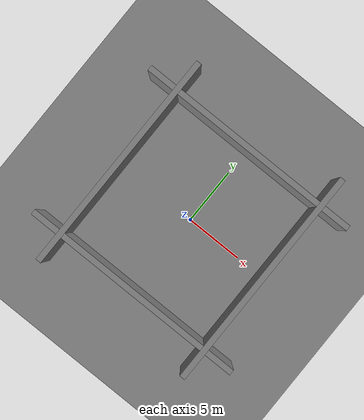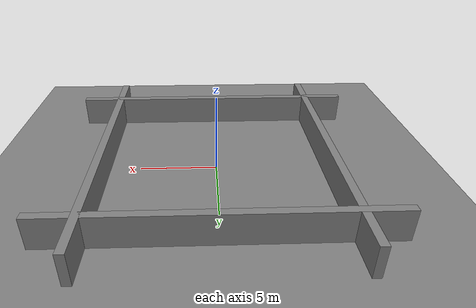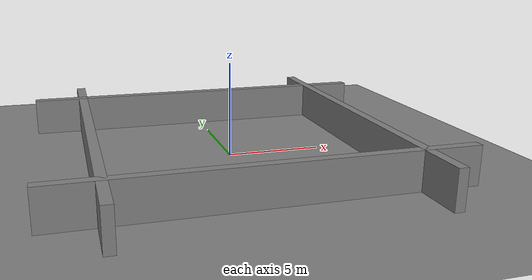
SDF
<sdf version="1.8">
 <world name="human_world">
  <physics name="1ms" type="ignored">
   <max_step_size>0.002</max_step_size>
   <real_time_update_rate>200</real_time_update_rate>
  </physics>
  <plugin filename="ignition-gazebo-physics-system" name="ignition::gazebo::systems::Physics">
   <include_entity_names>true</include_entity_names>
  </plugin>
  <plugin filename="ignition-gazebo-sensors-system" name="ignition::gazebo::systems::Sensors">
   <render_engine>ogre2</render_engine>
  </plugin>
  <plugin filename="ignition-gazebo-user-commands-system" name="ignition::gazebo::systems::UserCommands"/>
  <plugin filename="libignition-gazebo-contact-system.so" name="ignition::gazebo::systems::Contact">
   <topic>/world/human_world/physics/contacts</topic>
  </plugin>
  <plugin filename="ignition-gazebo-scene-broadcaster-system" name="ignition::gazebo::systems::SceneBroadcaster"/>
  <light name="sun" type="directional">
   <pose>0 0 10 0 -0 0</pose>
   <intensity>1</intensity>
   <direction>-0.5 0.5 -1</direction>
   <diffuse>1 1 1 1</diffuse>
   <specular>0.1 0.1 0.1 1</specular>
   <attenuation><range>10</range><linear>1</linear><constant>1</constant><quadratic>0</quadratic></attenuation>
  </light>
  <model name="ground_plane">
   <static>true</static>
   <link name="link">
    <collision name="collision">
     <geometry><plane><normal>0 0 1</normal><size>50 50</size></plane></geometry>
    </collision>
    <visual name="visual">
     <geometry><plane><normal>0 0 1</normal><size>50 50</size></plane></geometry>
     <material><ambient>0.5 0.5 0.5 1</ambient><diffuse>0.5 0.5 0.5 1</diffuse></material>
    </visual>
   </link>
  </model>
  <model name="north_wall">
   <pose>0 7.25 1.0 0 0 0</pose>
   <link name="link">
    <collision name="collision"><geometry><box><size>20 0.5 2.0</size></box></geometry></collision>
    <visual name="visual">
     <geometry><box><size>20 0.5 2.0</size></box></geometry>
     <material><ambient>0.5 0.5 0.5 1</ambient><diffuse>0.5 0.5 0.5 1</diffuse></material>
    </visual>
   </link>
   <static>true</static>
  </model>
  <model name="south_wall">
   <pose>0 -7.25 1.0 0 0 0</pose>
   <link name="link">
    <collision name="collision"><geometry><box><size>20 0.5 2.0</size></box></geometry></collision>
    <visual name="visual">
     <geometry><box><size>20 0.5 2.0</size></box></geometry>
     <material><ambient>0.5 0.5 0.5 1</ambient><diffuse>0.5 0.5 0.5 1</diffuse></material>
    </visual>
   </link>
   <static>true</static>
  </model>
  <model name="east_wall">
   <pose>7.25 0 1.0 0 0 0</pose>
   <link name="link">
    <collision name="collision"><geometry><box><size>0.5 20 2.0</size></box></geometry></collision>
    <visual name="visual">
     <geometry><box><size>0.5 20 2.0</size></box></geometry>
     <material><ambient>0.5 0.5 0.5 1</ambient><diffuse>0.5 0.5 0.5 1</diffuse></material>
    </visual>
   </link>
   <static>true</static>
  </model>
  <model name="west_wall">
   <pose>-7.25 0 1.0 0 0 0</pose>
   <link name="link">
    <collision name="collision"><geometry><box><size>0.5 20 2.0</size></box></geometry></collision>
    <visual name="visual">
     <geometry><box><size>0.5 20 2.0</size></box></geometry>
     <material><ambient>0.5 0.5 0.5 1</ambient><diffuse>0.5 0.5 0.5 1</diffuse></material>
    </visual>
   </link>
   <static>true</static>
  </model>
 </world>
</sdf>
